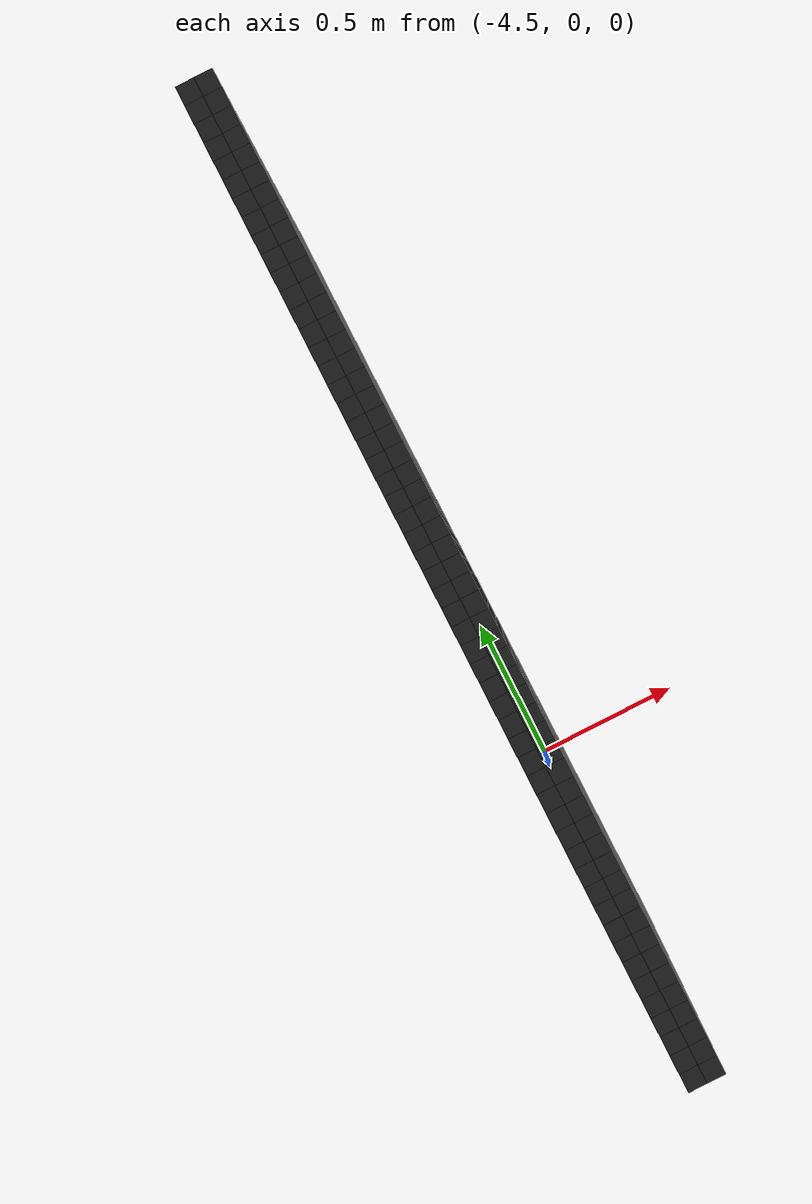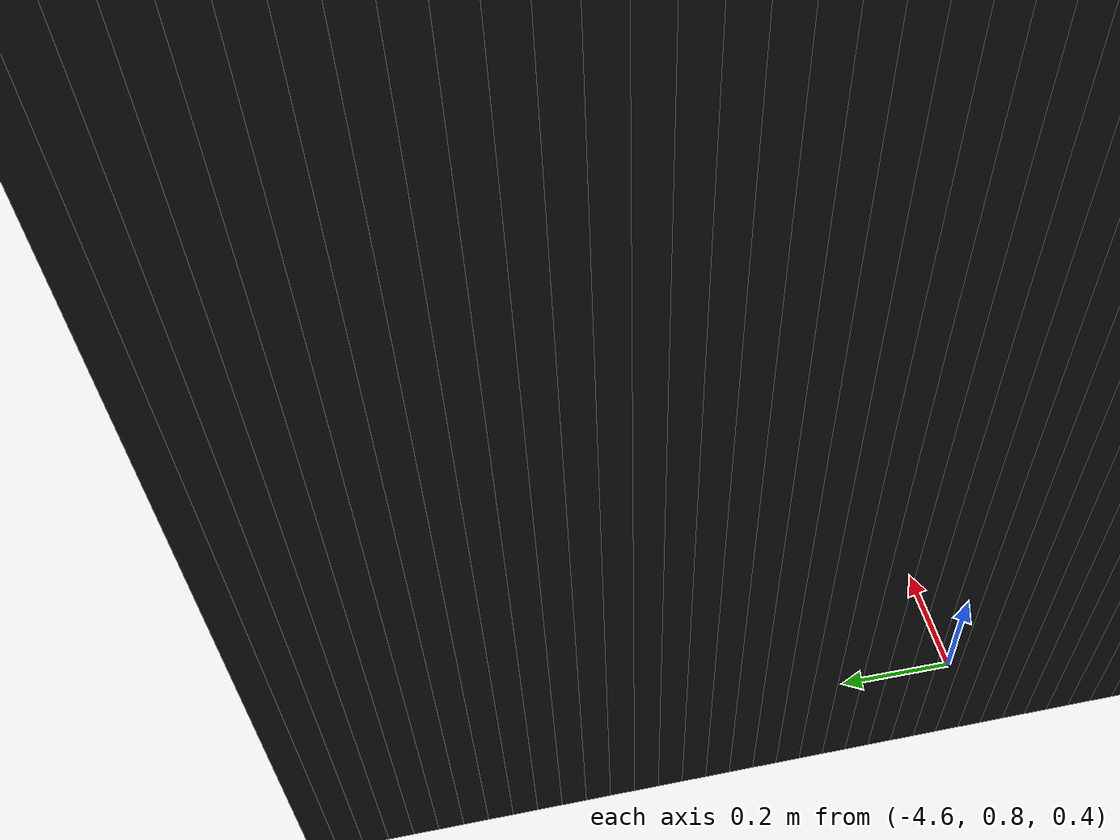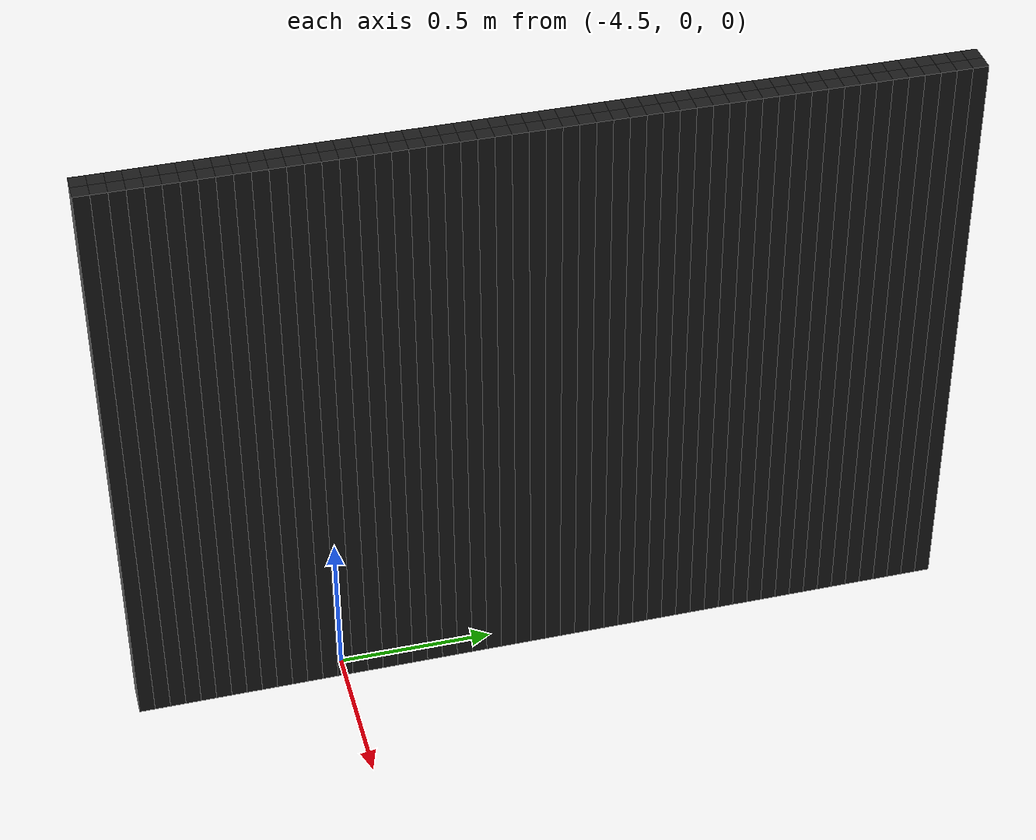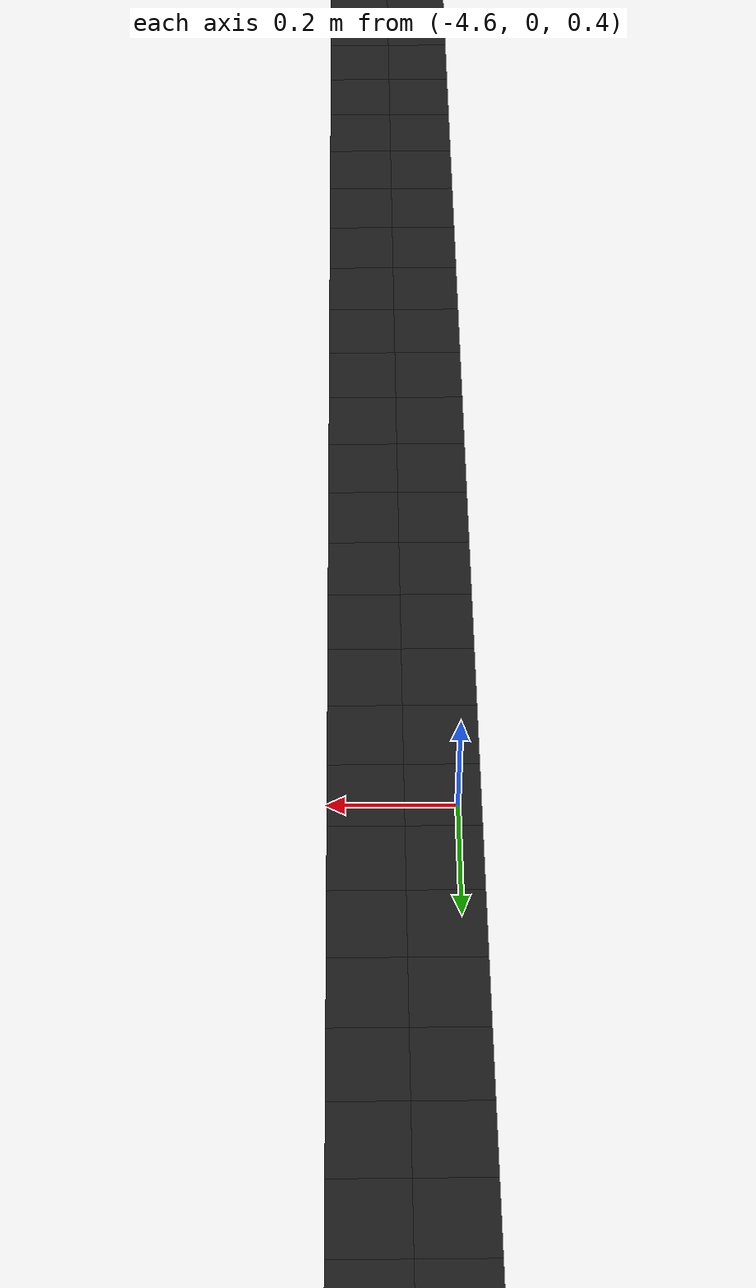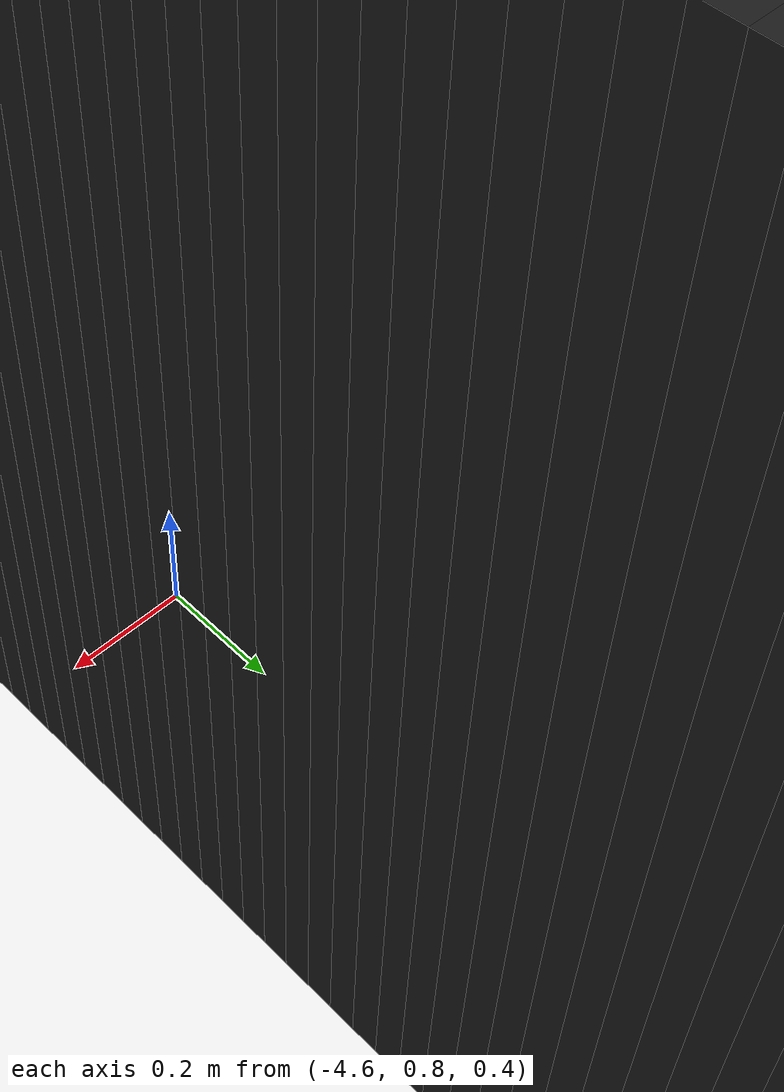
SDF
<sdf version="1.6">
 <model name="obstacle_0_127">
  <pose>-4.51 2.0 1.0 0 0 0</pose>
  <static>true</static>
  <link name="box_link">
   <collision name="box_collision"><geometry><box><size>0.05 0.05 2.0</size></box></geometry></collision>
   <visual name="box_visual">
    <geometry><box><size>0.05 0.05 2.0</size></box></geometry>
    <material><ambient>0 0 0 1</ambient><diffuse>0.1 0.1 0.1 1</diffuse></material>
   </visual>
  </link>
 </model>
 <model name="obstacle_1_127">
  <pose>-4.46 2.0 1.0 0 0 0</pose>
  <static>true</static>
  <link name="box_link">
   <collision name="box_collision"><geometry><box><size>0.05 0.05 2.0</size></box></geometry></collision>
   <visual name="box_visual">
    <geometry><box><size>0.05 0.05 2.0</size></box></geometry>
    <material><ambient>0 0 0 1</ambient><diffuse>0.1 0.1 0.1 1</diffuse></material>
   </visual>
  </link>
 </model>
 <model name="obstacle_0_128">
  <pose>-4.51 1.9500000000000002 1.0 0 0 0</pose>
  <static>true</static>
  <link name="box_link">
   <collision name="box_collision"><geometry><box><size>0.05 0.05 2.0</size></box></geometry></collision>
   <visual name="box_visual">
    <geometry><box><size>0.05 0.05 2.0</size></box></geometry>
    <material><ambient>0 0 0 1</ambient><diffuse>0.1 0.1 0.1 1</diffuse></material>
   </visual>
  </link>
 </model>
 <model name="obstacle_1_128">
  <pose>-4.46 1.9500000000000002 1.0 0 0 0</pose>
  <static>true</static>
  <link name="box_link">
   <collision name="box_collision"><geometry><box><size>0.05 0.05 2.0</size></box></geometry></collision>
   <visual name="box_visual">
    <geometry><box><size>0.05 0.05 2.0</size></box></geometry>
    <material><ambient>0 0 0 1</ambient><diffuse>0.1 0.1 0.1 1</diffuse></material>
   </visual>
  </link>
 </model>
 <model name="obstacle_0_129">
  <pose>-4.51 1.9000000000000004 1.0 0 0 0</pose>
  <static>true</static>
  <link name="box_link">
   <collision name="box_collision"><geometry><box><size>0.05 0.05 2.0</size></box></geometry></collision>
   <visual name="box_visual">
    <geometry><box><size>0.05 0.05 2.0</size></box></geometry>
    <material><ambient>0 0 0 1</ambient><diffuse>0.1 0.1 0.1 1</diffuse></material>
   </visual>
  </link>
 </model>
 <model name="obstacle_1_129">
  <pose>-4.46 1.9000000000000004 1.0 0 0 0</pose>
  <static>true</static>
  <link name="box_link">
   <collision name="box_collision"><geometry><box><size>0.05 0.05 2.0</size></box></geometry></collision>
   <visual name="box_visual">
    <geometry><box><size>0.05 0.05 2.0</size></box></geometry>
    <material><ambient>0 0 0 1</ambient><diffuse>0.1 0.1 0.1 1</diffuse></material>
   </visual>
  </link>
 </model>
 <model name="obstacle_0_130">
  <pose>-4.51 1.8499999999999996 1.0 0 0 0</pose>
  <static>true</static>
  <link name="box_link">
   <collision name="box_collision"><geometry><box><size>0.05 0.05 2.0</size></box></geometry></collision>
   <visual name="box_visual">
    <geometry><box><size>0.05 0.05 2.0</size></box></geometry>
    <material><ambient>0 0 0 1</ambient><diffuse>0.1 0.1 0.1 1</diffuse></material>
   </visual>
  </link>
 </model>
 <model name="obstacle_1_130">
  <pose>-4.46 1.8499999999999996 1.0 0 0 0</pose>
  <static>true</static>
  <link name="box_link">
   <collision name="box_collision"><geometry><box><size>0.05 0.05 2.0</size></box></geometry></collision>
   <visual name="box_visual">
    <geometry><box><size>0.05 0.05 2.0</size></box></geometry>
    <material><ambient>0 0 0 1</ambient><diffuse>0.1 0.1 0.1 1</diffuse></material>
   </visual>
  </link>
 </model>
 <model name="obstacle_0_131">
  <pose>-4.51 1.7999999999999998 1.0 0 0 0</pose>
  <static>true</static>
  <link name="box_link">
   <collision name="box_collision"><geometry><box><size>0.05 0.05 2.0</size></box></geometry></collision>
   <visual name="box_visual">
    <geometry><box><size>0.05 0.05 2.0</size></box></geometry>
    <material><ambient>0 0 0 1</ambient><diffuse>0.1 0.1 0.1 1</diffuse></material>
   </visual>
  </link>
 </model>
 <model name="obstacle_1_131">
  <pose>-4.46 1.7999999999999998 1.0 0 0 0</pose>
  <static>true</static>
  <link name="box_link">
   <collision name="box_collision"><geometry><box><size>0.05 0.05 2.0</size></box></geometry></collision>
   <visual name="box_visual">
    <geometry><box><size>0.05 0.05 2.0</size></box></geometry>
    <material><ambient>0 0 0 1</ambient><diffuse>0.1 0.1 0.1 1</diffuse></material>
   </visual>
  </link>
 </model>
 <model name="obstacle_0_132">
  <pose>-4.51 1.75 1.0 0 0 0</pose>
  <static>true</static>
  <link name="box_link">
   <collision name="box_collision"><geometry><box><size>0.05 0.05 2.0</size></box></geometry></collision>
   <visual name="box_visual">
    <geometry><box><size>0.05 0.05 2.0</size></box></geometry>
    <material><ambient>0 0 0 1</ambient><diffuse>0.1 0.1 0.1 1</diffuse></material>
   </visual>
  </link>
 </model>
 <model name="obstacle_1_132">
  <pose>-4.46 1.75 1.0 0 0 0</pose>
  <static>true</static>
  <link name="box_link">
   <collision name="box_collision"><geometry><box><size>0.05 0.05 2.0</size></box></geometry></collision>
   <visual name="box_visual">
    <geometry><box><size>0.05 0.05 2.0</size></box></geometry>
    <material><ambient>0 0 0 1</ambient><diffuse>0.1 0.1 0.1 1</diffuse></material>
   </visual>
  </link>
 </model>
 <model name="obstacle_0_133">
  <pose>-4.51 1.7000000000000002 1.0 0 0 0</pose>
  <static>true</static>
  <link name="box_link">
   <collision name="box_collision"><geometry><box><size>0.05 0.05 2.0</size></box></geometry></collision>
   <visual name="box_visual">
    <geometry><box><size>0.05 0.05 2.0</size></box></geometry>
    <material><ambient>0 0 0 1</ambient><diffuse>0.1 0.1 0.1 1</diffuse></material>
   </visual>
  </link>
 </model>
 <model name="obstacle_1_133">
  <pose>-4.46 1.7000000000000002 1.0 0 0 0</pose>
  <static>true</static>
  <link name="box_link">
   <collision name="box_collision"><geometry><box><size>0.05 0.05 2.0</size></box></geometry></collision>
   <visual name="box_visual">
    <geometry><box><size>0.05 0.05 2.0</size></box></geometry>
    <material><ambient>0 0 0 1</ambient><diffuse>0.1 0.1 0.1 1</diffuse></material>
   </visual>
  </link>
 </model>
 <model name="obstacle_0_134">
  <pose>-4.51 1.65 1.0 0 0 0</pose>
  <static>true</static>
  <link name="box_link">
   <collision name="box_collision"><geometry><box><size>0.05 0.05 2.0</size></box></geometry></collision>
   <visual name="box_visual">
    <geometry><box><size>0.05 0.05 2.0</size></box></geometry>
    <material><ambient>0 0 0 1</ambient><diffuse>0.1 0.1 0.1 1</diffuse></material>
   </visual>
  </link>
 </model>
 <model name="obstacle_1_134">
  <pose>-4.46 1.65 1.0 0 0 0</pose>
  <static>true</static>
  <link name="box_link">
   <collision name="box_collision"><geometry><box><size>0.05 0.05 2.0</size></box></geometry></collision>
   <visual name="box_visual">
    <geometry><box><size>0.05 0.05 2.0</size></box></geometry>
    <material><ambient>0 0 0 1</ambient><diffuse>0.1 0.1 0.1 1</diffuse></material>
   </visual>
  </link>
 </model>
 <model name="obstacle_0_135">
  <pose>-4.51 1.6 1.0 0 0 0</pose>
  <static>true</static>
  <link name="box_link">
   <collision name="box_collision"><geometry><box><size>0.05 0.05 2.0</size></box></geometry></collision>
   <visual name="box_visual">
    <geometry><box><size>0.05 0.05 2.0</size></box></geometry>
    <material><ambient>0 0 0 1</ambient><diffuse>0.1 0.1 0.1 1</diffuse></material>
   </visual>
  </link>
 </model>
 <model name="obstacle_1_135">
  <pose>-4.46 1.6 1.0 0 0 0</pose>
  <static>true</static>
  <link name="box_link">
   <collision name="box_collision"><geometry><box><size>0.05 0.05 2.0</size></box></geometry></collision>
   <visual name="box_visual">
    <geometry><box><size>0.05 0.05 2.0</size></box></geometry>
    <material><ambient>0 0 0 1</ambient><diffuse>0.1 0.1 0.1 1</diffuse></material>
   </visual>
  </link>
 </model>
 <model name="obstacle_0_136">
  <pose>-4.51 1.5499999999999998 1.0 0 0 0</pose>
  <static>true</static>
  <link name="box_link">
   <collision name="box_collision"><geometry><box><size>0.05 0.05 2.0</size></box></geometry></collision>
   <visual name="box_visual">
    <geometry><box><size>0.05 0.05 2.0</size></box></geometry>
    <material><ambient>0 0 0 1</ambient><diffuse>0.1 0.1 0.1 1</diffuse></material>
   </visual>
  </link>
 </model>
 <model name="obstacle_1_136">
  <pose>-4.46 1.5499999999999998 1.0 0 0 0</pose>
  <static>true</static>
  <link name="box_link">
   <collision name="box_collision"><geometry><box><size>0.05 0.05 2.0</size></box></geometry></collision>
   <visual name="box_visual">
    <geometry><box><size>0.05 0.05 2.0</size></box></geometry>
    <material><ambient>0 0 0 1</ambient><diffuse>0.1 0.1 0.1 1</diffuse></material>
   </visual>
  </link>
 </model>
 <model name="obstacle_0_137">
  <pose>-4.51 1.5 1.0 0 0 0</pose>
  <static>true</static>
  <link name="box_link">
   <collision name="box_collision"><geometry><box><size>0.05 0.05 2.0</size></box></geometry></collision>
   <visual name="box_visual">
    <geometry><box><size>0.05 0.05 2.0</size></box></geometry>
    <material><ambient>0 0 0 1</ambient><diffuse>0.1 0.1 0.1 1</diffuse></material>
   </visual>
  </link>
 </model>
 <model name="obstacle_1_137">
  <pose>-4.46 1.5 1.0 0 0 0</pose>
  <static>true</static>
  <link name="box_link">
   <collision name="box_collision"><geometry><box><size>0.05 0.05 2.0</size></box></geometry></collision>
   <visual name="box_visual">
    <geometry><box><size>0.05 0.05 2.0</size></box></geometry>
    <material><ambient>0 0 0 1</ambient><diffuse>0.1 0.1 0.1 1</diffuse></material>
   </visual>
  </link>
 </model>
 <model name="obstacle_0_138">
  <pose>-4.51 1.4500000000000002 1.0 0 0 0</pose>
  <static>true</static>
  <link name="box_link">
   <collision name="box_collision"><geometry><box><size>0.05 0.05 2.0</size></box></geometry></collision>
   <visual name="box_visual">
    <geometry><box><size>0.05 0.05 2.0</size></box></geometry>
    <material><ambient>0 0 0 1</ambient><diffuse>0.1 0.1 0.1 1</diffuse></material>
   </visual>
  </link>
 </model>
 <model name="obstacle_1_138">
  <pose>-4.46 1.4500000000000002 1.0 0 0 0</pose>
  <static>true</static>
  <link name="box_link">
   <collision name="box_collision"><geometry><box><size>0.05 0.05 2.0</size></box></geometry></collision>
   <visual name="box_visual">
    <geometry><box><size>0.05 0.05 2.0</size></box></geometry>
    <material><ambient>0 0 0 1</ambient><diffuse>0.1 0.1 0.1 1</diffuse></material>
   </visual>
  </link>
 </model>
 <model name="obstacle_0_139">
  <pose>-4.51 1.4 1.0 0 0 0</pose>
  <static>true</static>
  <link name="box_link">
   <collision name="box_collision"><geometry><box><size>0.05 0.05 2.0</size></box></geometry></collision>
   <visual name="box_visual">
    <geometry><box><size>0.05 0.05 2.0</size></box></geometry>
    <material><ambient>0 0 0 1</ambient><diffuse>0.1 0.1 0.1 1</diffuse></material>
   </visual>
  </link>
 </model>
 <model name="obstacle_1_139">
  <pose>-4.46 1.4 1.0 0 0 0</pose>
  <static>true</static>
  <link name="box_link">
   <collision name="box_collision"><geometry><box><size>0.05 0.05 2.0</size></box></geometry></collision>
   <visual name="box_visual">
    <geometry><box><size>0.05 0.05 2.0</size></box></geometry>
    <material><ambient>0 0 0 1</ambient><diffuse>0.1 0.1 0.1 1</diffuse></material>
   </visual>
  </link>
 </model>
 <model name="obstacle_0_140">
  <pose>-4.51 1.35 1.0 0 0 0</pose>
  <static>true</static>
  <link name="box_link">
   <collision name="box_collision"><geometry><box><size>0.05 0.05 2.0</size></box></geometry></collision>
   <visual name="box_visual">
    <geometry><box><size>0.05 0.05 2.0</size></box></geometry>
    <material><ambient>0 0 0 1</ambient><diffuse>0.1 0.1 0.1 1</diffuse></material>
   </visual>
  </link>
 </model>
 <model name="obstacle_1_140">
  <pose>-4.46 1.35 1.0 0 0 0</pose>
  <static>true</static>
  <link name="box_link">
   <collision name="box_collision"><geometry><box><size>0.05 0.05 2.0</size></box></geometry></collision>
   <visual name="box_visual">
    <geometry><box><size>0.05 0.05 2.0</size></box></geometry>
    <material><ambient>0 0 0 1</ambient><diffuse>0.1 0.1 0.1 1</diffuse></material>
   </visual>
  </link>
 </model>
 <model name="obstacle_0_141">
  <pose>-4.51 1.2999999999999998 1.0 0 0 0</pose>
  <static>true</static>
  <link name="box_link">
   <collision name="box_collision"><geometry><box><size>0.05 0.05 2.0</size></box></geometry></collision>
   <visual name="box_visual">
    <geometry><box><size>0.05 0.05 2.0</size></box></geometry>
    <material><ambient>0 0 0 1</ambient><diffuse>0.1 0.1 0.1 1</diffuse></material>
   </visual>
  </link>
 </model>
 <model name="obstacle_1_141">
  <pose>-4.46 1.2999999999999998 1.0 0 0 0</pose>
  <static>true</static>
  <link name="box_link">
   <collision name="box_collision"><geometry><box><size>0.05 0.05 2.0</size></box></geometry></collision>
   <visual name="box_visual">
    <geometry><box><size>0.05 0.05 2.0</size></box></geometry>
    <material><ambient>0 0 0 1</ambient><diffuse>0.1 0.1 0.1 1</diffuse></material>
   </visual>
  </link>
 </model>
 <model name="obstacle_0_142">
  <pose>-4.51 1.25 1.0 0 0 0</pose>
  <static>true</static>
  <link name="box_link">
   <collision name="box_collision"><geometry><box><size>0.05 0.05 2.0</size></box></geometry></collision>
   <visual name="box_visual">
    <geometry><box><size>0.05 0.05 2.0</size></box></geometry>
    <material><ambient>0 0 0 1</ambient><diffuse>0.1 0.1 0.1 1</diffuse></material>
   </visual>
  </link>
 </model>
 <model name="obstacle_1_142">
  <pose>-4.46 1.25 1.0 0 0 0</pose>
  <static>true</static>
  <link name="box_link">
   <collision name="box_collision"><geometry><box><size>0.05 0.05 2.0</size></box></geometry></collision>
   <visual name="box_visual">
    <geometry><box><size>0.05 0.05 2.0</size></box></geometry>
    <material><ambient>0 0 0 1</ambient><diffuse>0.1 0.1 0.1 1</diffuse></material>
   </visual>
  </link>
 </model>
 <model name="obstacle_0_143">
  <pose>-4.51 1.2000000000000002 1.0 0 0 0</pose>
  <static>true</static>
  <link name="box_link">
   <collision name="box_collision"><geometry><box><size>0.05 0.05 2.0</size></box></geometry></collision>
   <visual name="box_visual">
    <geometry><box><size>0.05 0.05 2.0</size></box></geometry>
    <material><ambient>0 0 0 1</ambient><diffuse>0.1 0.1 0.1 1</diffuse></material>
   </visual>
  </link>
 </model>
 <model name="obstacle_1_143">
  <pose>-4.46 1.2000000000000002 1.0 0 0 0</pose>
  <static>true</static>
  <link name="box_link">
   <collision name="box_collision"><geometry><box><size>0.05 0.05 2.0</size></box></geometry></collision>
   <visual name="box_visual">
    <geometry><box><size>0.05 0.05 2.0</size></box></geometry>
    <material><ambient>0 0 0 1</ambient><diffuse>0.1 0.1 0.1 1</diffuse></material>
   </visual>
  </link>
 </model>
 <model name="obstacle_0_144">
  <pose>-4.51 1.15 1.0 0 0 0</pose>
  <static>true</static>
  <link name="box_link">
   <collision name="box_collision"><geometry><box><size>0.05 0.05 2.0</size></box></geometry></collision>
   <visual name="box_visual">
    <geometry><box><size>0.05 0.05 2.0</size></box></geometry>
    <material><ambient>0 0 0 1</ambient><diffuse>0.1 0.1 0.1 1</diffuse></material>
   </visual>
  </link>
 </model>
 <model name="obstacle_1_144">
  <pose>-4.46 1.15 1.0 0 0 0</pose>
  <static>true</static>
  <link name="box_link">
   <collision name="box_collision"><geometry><box><size>0.05 0.05 2.0</size></box></geometry></collision>
   <visual name="box_visual">
    <geometry><box><size>0.05 0.05 2.0</size></box></geometry>
    <material><ambient>0 0 0 1</ambient><diffuse>0.1 0.1 0.1 1</diffuse></material>
   </visual>
  </link>
 </model>
 <model name="obstacle_0_145">
  <pose>-4.51 1.1 1.0 0 0 0</pose>
  <static>true</static>
  <link name="box_link">
   <collision name="box_collision"><geometry><box><size>0.05 0.05 2.0</size></box></geometry></collision>
   <visual name="box_visual">
    <geometry><box><size>0.05 0.05 2.0</size></box></geometry>
    <material><ambient>0 0 0 1</ambient><diffuse>0.1 0.1 0.1 1</diffuse></material>
   </visual>
  </link>
 </model>
 <model name="obstacle_1_145">
  <pose>-4.46 1.1 1.0 0 0 0</pose>
  <static>true</static>
  <link name="box_link">
   <collision name="box_collision"><geometry><box><size>0.05 0.05 2.0</size></box></geometry></collision>
   <visual name="box_visual">
    <geometry><box><size>0.05 0.05 2.0</size></box></geometry>
    <material><ambient>0 0 0 1</ambient><diffuse>0.1 0.1 0.1 1</diffuse></material>
   </visual>
  </link>
 </model>
 <model name="obstacle_0_146">
  <pose>-4.51 1.0499999999999998 1.0 0 0 0</pose>
  <static>true</static>
  <link name="box_link">
   <collision name="box_collision"><geometry><box><size>0.05 0.05 2.0</size></box></geometry></collision>
   <visual name="box_visual">
    <geometry><box><size>0.05 0.05 2.0</size></box></geometry>
    <material><ambient>0 0 0 1</ambient><diffuse>0.1 0.1 0.1 1</diffuse></material>
   </visual>
  </link>
 </model>
 <model name="obstacle_1_146">
  <pose>-4.46 1.0499999999999998 1.0 0 0 0</pose>
  <static>true</static>
  <link name="box_link">
   <collision name="box_collision"><geometry><box><size>0.05 0.05 2.0</size></box></geometry></collision>
   <visual name="box_visual">
    <geometry><box><size>0.05 0.05 2.0</size></box></geometry>
    <material><ambient>0 0 0 1</ambient><diffuse>0.1 0.1 0.1 1</diffuse></material>
   </visual>
  </link>
 </model>
 <model name="obstacle_0_147">
  <pose>-4.51 1.0 1.0 0 0 0</pose>
  <static>true</static>
  <link name="box_link">
   <collision name="box_collision"><geometry><box><size>0.05 0.05 2.0</size></box></geometry></collision>
   <visual name="box_visual">
    <geometry><box><size>0.05 0.05 2.0</size></box></geometry>
    <material><ambient>0 0 0 1</ambient><diffuse>0.1 0.1 0.1 1</diffuse></material>
   </visual>
  </link>
 </model>
 <model name="obstacle_1_147">
  <pose>-4.46 1.0 1.0 0 0 0</pose>
  <static>true</static>
  <link name="box_link">
   <collision name="box_collision"><geometry><box><size>0.05 0.05 2.0</size></box></geometry></collision>
   <visual name="box_visual">
    <geometry><box><size>0.05 0.05 2.0</size></box></geometry>
    <material><ambient>0 0 0 1</ambient><diffuse>0.1 0.1 0.1 1</diffuse></material>
   </visual>
  </link>
 </model>
 <model name="obstacle_0_148">
  <pose>-4.51 0.9500000000000002 1.0 0 0 0</pose>
  <static>true</static>
  <link name="box_link">
   <collision name="box_collision"><geometry><box><size>0.05 0.05 2.0</size></box></geometry></collision>
   <visual name="box_visual">
    <geometry><box><size>0.05 0.05 2.0</size></box></geometry>
    <material><ambient>0 0 0 1</ambient><diffuse>0.1 0.1 0.1 1</diffuse></material>
   </visual>
  </link>
 </model>
 <model name="obstacle_1_148">
  <pose>-4.46 0.9500000000000002 1.0 0 0 0</pose>
  <static>true</static>
  <link name="box_link">
   <collision name="box_collision"><geometry><box><size>0.05 0.05 2.0</size></box></geometry></collision>
   <visual name="box_visual">
    <geometry><box><size>0.05 0.05 2.0</size></box></geometry>
    <material><ambient>0 0 0 1</ambient><diffuse>0.1 0.1 0.1 1</diffuse></material>
   </visual>
  </link>
 </model>
 <model name="obstacle_0_149">
  <pose>-4.51 0.8999999999999999 1.0 0 0 0</pose>
  <static>true</static>
  <link name="box_link">
   <collision name="box_collision"><geometry><box><size>0.05 0.05 2.0</size></box></geometry></collision>
   <visual name="box_visual">
    <geometry><box><size>0.05 0.05 2.0</size></box></geometry>
    <material><ambient>0 0 0 1</ambient><diffuse>0.1 0.1 0.1 1</diffuse></material>
   </visual>
  </link>
 </model>
 <model name="obstacle_1_149">
  <pose>-4.46 0.8999999999999999 1.0 0 0 0</pose>
  <static>true</static>
  <link name="box_link">
   <collision name="box_collision"><geometry><box><size>0.05 0.05 2.0</size></box></geometry></collision>
   <visual name="box_visual">
    <geometry><box><size>0.05 0.05 2.0</size></box></geometry>
    <material><ambient>0 0 0 1</ambient><diffuse>0.1 0.1 0.1 1</diffuse></material>
   </visual>
  </link>
 </model>
 <model name="obstacle_0_150">
  <pose>-4.51 0.8500000000000001 1.0 0 0 0</pose>
  <static>true</static>
  <link name="box_link">
   <collision name="box_collision"><geometry><box><size>0.05 0.05 2.0</size></box></geometry></collision>
   <visual name="box_visual">
    <geometry><box><size>0.05 0.05 2.0</size></box></geometry>
    <material><ambient>0 0 0 1</ambient><diffuse>0.1 0.1 0.1 1</diffuse></material>
   </visual>
  </link>
 </model>
 <model name="obstacle_1_150">
  <pose>-4.46 0.8500000000000001 1.0 0 0 0</pose>
  <static>true</static>
  <link name="box_link">
   <collision name="box_collision"><geometry><box><size>0.05 0.05 2.0</size></box></geometry></collision>
   <visual name="box_visual">
    <geometry><box><size>0.05 0.05 2.0</size></box></geometry>
    <material><ambient>0 0 0 1</ambient><diffuse>0.1 0.1 0.1 1</diffuse></material>
   </visual>
  </link>
 </model>
 <model name="obstacle_0_151">
  <pose>-4.51 0.7999999999999998 1.0 0 0 0</pose>
  <static>true</static>
  <link name="box_link">
   <collision name="box_collision"><geometry><box><size>0.05 0.05 2.0</size></box></geometry></collision>
   <visual name="box_visual">
    <geometry><box><size>0.05 0.05 2.0</size></box></geometry>
    <material><ambient>0 0 0 1</ambient><diffuse>0.1 0.1 0.1 1</diffuse></material>
   </visual>
  </link>
 </model>
 <model name="obstacle_1_151">
  <pose>-4.46 0.7999999999999998 1.0 0 0 0</pose>
  <static>true</static>
  <link name="box_link">
   <collision name="box_collision"><geometry><box><size>0.05 0.05 2.0</size></box></geometry></collision>
   <visual name="box_visual">
    <geometry><box><size>0.05 0.05 2.0</size></box></geometry>
    <material><ambient>0 0 0 1</ambient><diffuse>0.1 0.1 0.1 1</diffuse></material>
   </visual>
  </link>
 </model>
 <model name="obstacle_0_152">
  <pose>-4.51 0.75 1.0 0 0 0</pose>
  <static>true</static>
  <link name="box_link">
   <collision name="box_collision"><geometry><box><size>0.05 0.05 2.0</size></box></geometry></collision>
   <visual name="box_visual">
    <geometry><box><size>0.05 0.05 2.0</size></box></geometry>
    <material><ambient>0 0 0 1</ambient><diffuse>0.1 0.1 0.1 1</diffuse></material>
   </visual>
  </link>
 </model>
 <model name="obstacle_1_152">
  <pose>-4.46 0.75 1.0 0 0 0</pose>
  <static>true</static>
  <link name="box_link">
   <collision name="box_collision"><geometry><box><size>0.05 0.05 2.0</size></box></geometry></collision>
   <visual name="box_visual">
    <geometry><box><size>0.05 0.05 2.0</size></box></geometry>
    <material><ambient>0 0 0 1</ambient><diffuse>0.1 0.1 0.1 1</diffuse></material>
   </visual>
  </link>
 </model>
 <model name="obstacle_0_153">
  <pose>-4.51 0.7000000000000002 1.0 0 0 0</pose>
  <static>true</static>
  <link name="box_link">
   <collision name="box_collision"><geometry><box><size>0.05 0.05 2.0</size></box></geometry></collision>
   <visual name="box_visual">
    <geometry><box><size>0.05 0.05 2.0</size></box></geometry>
    <material><ambient>0 0 0 1</ambient><diffuse>0.1 0.1 0.1 1</diffuse></material>
   </visual>
  </link>
 </model>
 <model name="obstacle_1_153">
  <pose>-4.46 0.7000000000000002 1.0 0 0 0</pose>
  <static>true</static>
  <link name="box_link">
   <collision name="box_collision"><geometry><box><size>0.05 0.05 2.0</size></box></geometry></collision>
   <visual name="box_visual">
    <geometry><box><size>0.05 0.05 2.0</size></box></geometry>
    <material><ambient>0 0 0 1</ambient><diffuse>0.1 0.1 0.1 1</diffuse></material>
   </visual>
  </link>
 </model>
 <model name="obstacle_0_154">
  <pose>-4.51 0.6499999999999999 1.0 0 0 0</pose>
  <static>true</static>
  <link name="box_link">
   <collision name="box_collision"><geometry><box><size>0.05 0.05 2.0</size></box></geometry></collision>
   <visual name="box_visual">
    <geometry><box><size>0.05 0.05 2.0</size></box></geometry>
    <material><ambient>0 0 0 1</ambient><diffuse>0.1 0.1 0.1 1</diffuse></material>
   </visual>
  </link>
 </model>
 <model name="obstacle_1_154">
  <pose>-4.46 0.6499999999999999 1.0 0 0 0</pose>
  <static>true</static>
  <link name="box_link">
   <collision name="box_collision"><geometry><box><size>0.05 0.05 2.0</size></box></geometry></collision>
   <visual name="box_visual">
    <geometry><box><size>0.05 0.05 2.0</size></box></geometry>
    <material><ambient>0 0 0 1</ambient><diffuse>0.1 0.1 0.1 1</diffuse></material>
   </visual>
  </link>
 </model>
 <model name="obstacle_0_155">
  <pose>-4.51 0.6000000000000001 1.0 0 0 0</pose>
  <static>true</static>
  <link name="box_link">
   <collision name="box_collision"><geometry><box><size>0.05 0.05 2.0</size></box></geometry></collision>
   <visual name="box_visual">
    <geometry><box><size>0.05 0.05 2.0</size></box></geometry>
    <material><ambient>0 0 0 1</ambient><diffuse>0.1 0.1 0.1 1</diffuse></material>
   </visual>
  </link>
 </model>
 <model name="obstacle_1_155">
  <pose>-4.46 0.6000000000000001 1.0 0 0 0</pose>
  <static>true</static>
  <link name="box_link">
   <collision name="box_collision"><geometry><box><size>0.05 0.05 2.0</size></box></geometry></collision>
   <visual name="box_visual">
    <geometry><box><size>0.05 0.05 2.0</size></box></geometry>
    <material><ambient>0 0 0 1</ambient><diffuse>0.1 0.1 0.1 1</diffuse></material>
   </visual>
  </link>
 </model>
 <model name="obstacle_0_156">
  <pose>-4.51 0.5499999999999998 1.0 0 0 0</pose>
  <static>true</static>
  <link name="box_link">
   <collision name="box_collision"><geometry><box><size>0.05 0.05 2.0</size></box></geometry></collision>
   <visual name="box_visual">
    <geometry><box><size>0.05 0.05 2.0</size></box></geometry>
    <material><ambient>0 0 0 1</ambient><diffuse>0.1 0.1 0.1 1</diffuse></material>
   </visual>
  </link>
 </model>
 <model name="obstacle_1_156">
  <pose>-4.46 0.5499999999999998 1.0 0 0 0</pose>
  <static>true</static>
  <link name="box_link">
   <collision name="box_collision"><geometry><box><size>0.05 0.05 2.0</size></box></geometry></collision>
   <visual name="box_visual">
    <geometry><box><size>0.05 0.05 2.0</size></box></geometry>
    <material><ambient>0 0 0 1</ambient><diffuse>0.1 0.1 0.1 1</diffuse></material>
   </visual>
  </link>
 </model>
 <model name="obstacle_0_157">
  <pose>-4.51 0.5 1.0 0 0 0</pose>
  <static>true</static>
  <link name="box_link">
   <collision name="box_collision"><geometry><box><size>0.05 0.05 2.0</size></box></geometry></collision>
   <visual name="box_visual">
    <geometry><box><size>0.05 0.05 2.0</size></box></geometry>
    <material><ambient>0 0 0 1</ambient><diffuse>0.1 0.1 0.1 1</diffuse></material>
   </visual>
  </link>
 </model>
 <model name="obstacle_1_157">
  <pose>-4.46 0.5 1.0 0 0 0</pose>
  <static>true</static>
  <link name="box_link">
   <collision name="box_collision"><geometry><box><size>0.05 0.05 2.0</size></box></geometry></collision>
   <visual name="box_visual">
    <geometry><box><size>0.05 0.05 2.0</size></box></geometry>
    <material><ambient>0 0 0 1</ambient><diffuse>0.1 0.1 0.1 1</diffuse></material>
   </visual>
  </link>
 </model>
 <model name="obstacle_0_158">
  <pose>-4.51 0.4500000000000002 1.0 0 0 0</pose>
  <static>true</static>
  <link name="box_link">
   <collision name="box_collision"><geometry><box><size>0.05 0.05 2.0</size></box></geometry></collision>
   <visual name="box_visual">
    <geometry><box><size>0.05 0.05 2.0</size></box></geometry>
    <material><ambient>0 0 0 1</ambient><diffuse>0.1 0.1 0.1 1</diffuse></material>
   </visual>
  </link>
 </model>
 <model name="obstacle_1_158">
  <pose>-4.46 0.4500000000000002 1.0 0 0 0</pose>
  <static>true</static>
  <link name="box_link">
   <collision name="box_collision"><geometry><box><size>0.05 0.05 2.0</size></box></geometry></collision>
   <visual name="box_visual">
    <geometry><box><size>0.05 0.05 2.0</size></box></geometry>
    <material><ambient>0 0 0 1</ambient><diffuse>0.1 0.1 0.1 1</diffuse></material>
   </visual>
  </link>
 </model>
 <model name="obstacle_0_159">
  <pose>-4.51 0.3999999999999999 1.0 0 0 0</pose>
  <static>true</static>
  <link name="box_link">
   <collision name="box_collision"><geometry><box><size>0.05 0.05 2.0</size></box></geometry></collision>
   <visual name="box_visual">
    <geometry><box><size>0.05 0.05 2.0</size></box></geometry>
    <material><ambient>0 0 0 1</ambient><diffuse>0.1 0.1 0.1 1</diffuse></material>
   </visual>
  </link>
 </model>
 <model name="obstacle_1_159">
  <pose>-4.46 0.3999999999999999 1.0 0 0 0</pose>
  <static>true</static>
  <link name="box_link">
   <collision name="box_collision"><geometry><box><size>0.05 0.05 2.0</size></box></geometry></collision>
   <visual name="box_visual">
    <geometry><box><size>0.05 0.05 2.0</size></box></geometry>
    <material><ambient>0 0 0 1</ambient><diffuse>0.1 0.1 0.1 1</diffuse></material>
   </visual>
  </link>
 </model>
 <model name="obstacle_0_160">
  <pose>-4.51 0.3500000000000001 1.0 0 0 0</pose>
  <static>true</static>
  <link name="box_link">
   <collision name="box_collision"><geometry><box><size>0.05 0.05 2.0</size></box></geometry></collision>
   <visual name="box_visual">
    <geometry><box><size>0.05 0.05 2.0</size></box></geometry>
    <material><ambient>0 0 0 1</ambient><diffuse>0.1 0.1 0.1 1</diffuse></material>
   </visual>
  </link>
 </model>
 <model name="obstacle_1_160">
  <pose>-4.46 0.3500000000000001 1.0 0 0 0</pose>
  <static>true</static>
  <link name="box_link">
   <collision name="box_collision"><geometry><box><size>0.05 0.05 2.0</size></box></geometry></collision>
   <visual name="box_visual">
    <geometry><box><size>0.05 0.05 2.0</size></box></geometry>
    <material><ambient>0 0 0 1</ambient><diffuse>0.1 0.1 0.1 1</diffuse></material>
   </visual>
  </link>
 </model>
 <model name="obstacle_0_161">
  <pose>-4.51 0.2999999999999998 1.0 0 0 0</pose>
  <static>true</static>
  <link name="box_link">
   <collision name="box_collision"><geometry><box><size>0.05 0.05 2.0</size></box></geometry></collision>
   <visual name="box_visual">
    <geometry><box><size>0.05 0.05 2.0</size></box></geometry>
    <material><ambient>0 0 0 1</ambient><diffuse>0.1 0.1 0.1 1</diffuse></material>
   </visual>
  </link>
 </model>
 <model name="obstacle_1_161">
  <pose>-4.46 0.2999999999999998 1.0 0 0 0</pose>
  <static>true</static>
  <link name="box_link">
   <collision name="box_collision"><geometry><box><size>0.05 0.05 2.0</size></box></geometry></collision>
   <visual name="box_visual">
    <geometry><box><size>0.05 0.05 2.0</size></box></geometry>
    <material><ambient>0 0 0 1</ambient><diffuse>0.1 0.1 0.1 1</diffuse></material>
   </visual>
  </link>
 </model>
 <model name="obstacle_0_162">
  <pose>-4.51 0.25 1.0 0 0 0</pose>
  <static>true</static>
  <link name="box_link">
   <collision name="box_collision"><geometry><box><size>0.05 0.05 2.0</size></box></geometry></collision>
   <visual name="box_visual">
    <geometry><box><size>0.05 0.05 2.0</size></box></geometry>
    <material><ambient>0 0 0 1</ambient><diffuse>0.1 0.1 0.1 1</diffuse></material>
   </visual>
  </link>
 </model>
 <model name="obstacle_1_162">
  <pose>-4.46 0.25 1.0 0 0 0</pose>
  <static>true</static>
  <link name="box_link">
   <collision name="box_collision"><geometry><box><size>0.05 0.05 2.0</size></box></geometry></collision>
   <visual name="box_visual">
    <geometry><box><size>0.05 0.05 2.0</size></box></geometry>
    <material><ambient>0 0 0 1</ambient><diffuse>0.1 0.1 0.1 1</diffuse></material>
   </visual>
  </link>
 </model>
 <model name="obstacle_0_163">
  <pose>-4.51 0.20000000000000018 1.0 0 0 0</pose>
  <static>true</static>
  <link name="box_link">
   <collision name="box_collision"><geometry><box><size>0.05 0.05 2.0</size></box></geometry></collision>
   <visual name="box_visual">
    <geometry><box><size>0.05 0.05 2.0</size></box></geometry>
    <material><ambient>0 0 0 1</ambient><diffuse>0.1 0.1 0.1 1</diffuse></material>
   </visual>
  </link>
 </model>
 <model name="obstacle_1_163">
  <pose>-4.46 0.20000000000000018 1.0 0 0 0</pose>
  <static>true</static>
  <link name="box_link">
   <collision name="box_collision"><geometry><box><size>0.05 0.05 2.0</size></box></geometry></collision>
   <visual name="box_visual">
    <geometry><box><size>0.05 0.05 2.0</size></box></geometry>
    <material><ambient>0 0 0 1</ambient><diffuse>0.1 0.1 0.1 1</diffuse></material>
   </visual>
  </link>
 </model>
 <model name="obstacle_0_164">
  <pose>-4.51 0.1499999999999999 1.0 0 0 0</pose>
  <static>true</static>
  <link name="box_link">
   <collision name="box_collision"><geometry><box><size>0.05 0.05 2.0</size></box></geometry></collision>
   <visual name="box_visual">
    <geometry><box><size>0.05 0.05 2.0</size></box></geometry>
    <material><ambient>0 0 0 1</ambient><diffuse>0.1 0.1 0.1 1</diffuse></material>
   </visual>
  </link>
 </model>
 <model name="obstacle_1_164">
  <pose>-4.46 0.1499999999999999 1.0 0 0 0</pose>
  <static>true</static>
  <link name="box_link">
   <collision name="box_collision"><geometry><box><size>0.05 0.05 2.0</size></box></geometry></collision>
   <visual name="box_visual">
    <geometry><box><size>0.05 0.05 2.0</size></box></geometry>
    <material><ambient>0 0 0 1</ambient><diffuse>0.1 0.1 0.1 1</diffuse></material>
   </visual>
  </link>
 </model>
 <model name="obstacle_0_165">
  <pose>-4.51 0.10000000000000009 1.0 0 0 0</pose>
  <static>true</static>
  <link name="box_link">
   <collision name="box_collision"><geometry><box><size>0.05 0.05 2.0</size></box></geometry></collision>
   <visual name="box_visual">
    <geometry><box><size>0.05 0.05 2.0</size></box></geometry>
    <material><ambient>0 0 0 1</ambient><diffuse>0.1 0.1 0.1 1</diffuse></material>
   </visual>
  </link>
 </model>
 <model name="obstacle_1_165">
  <pose>-4.46 0.10000000000000009 1.0 0 0 0</pose>
  <static>true</static>
  <link name="box_link">
   <collision name="box_collision"><geometry><box><size>0.05 0.05 2.0</size></box></geometry></collision>
   <visual name="box_visual">
    <geometry><box><size>0.05 0.05 2.0</size></box></geometry>
    <material><ambient>0 0 0 1</ambient><diffuse>0.1 0.1 0.1 1</diffuse></material>
   </visual>
  </link>
 </model>
 <model name="obstacle_0_166">
  <pose>-4.51 0.04999999999999982 1.0 0 0 0</pose>
  <static>true</static>
  <link name="box_link">
   <collision name="box_collision"><geometry><box><size>0.05 0.05 2.0</size></box></geometry></collision>
   <visual name="box_visual">
    <geometry><box><size>0.05 0.05 2.0</size></box></geometry>
    <material><ambient>0 0 0 1</ambient><diffuse>0.1 0.1 0.1 1</diffuse></material>
   </visual>
  </link>
 </model>
 <model name="obstacle_1_166">
  <pose>-4.46 0.04999999999999982 1.0 0 0 0</pose>
  <static>true</static>
  <link name="box_link">
   <collision name="box_collision"><geometry><box><size>0.05 0.05 2.0</size></box></geometry></collision>
   <visual name="box_visual">
    <geometry><box><size>0.05 0.05 2.0</size></box></geometry>
    <material><ambient>0 0 0 1</ambient><diffuse>0.1 0.1 0.1 1</diffuse></material>
   </visual>
  </link>
 </model>
 <model name="obstacle_0_167">
  <pose>-4.51 0.0 1.0 0 0 0</pose>
  <static>true</static>
  <link name="box_link">
   <collision name="box_collision"><geometry><box><size>0.05 0.05 2.0</size></box></geometry></collision>
   <visual name="box_visual">
    <geometry><box><size>0.05 0.05 2.0</size></box></geometry>
    <material><ambient>0 0 0 1</ambient><diffuse>0.1 0.1 0.1 1</diffuse></material>
   </visual>
  </link>
 </model>
 <model name="obstacle_1_167">
  <pose>-4.46 0.0 1.0 0 0 0</pose>
  <static>true</static>
  <link name="box_link">
   <collision name="box_collision"><geometry><box><size>0.05 0.05 2.0</size></box></geometry></collision>
   <visual name="box_visual">
    <geometry><box><size>0.05 0.05 2.0</size></box></geometry>
    <material><ambient>0 0 0 1</ambient><diffuse>0.1 0.1 0.1 1</diffuse></material>
   </visual>
  </link>
 </model>
 <model name="obstacle_0_168">
  <pose>-4.51 -0.050000000000000266 1.0 0 0 0</pose>
  <static>true</static>
  <link name="box_link">
   <collision name="box_collision"><geometry><box><size>0.05 0.05 2.0</size></box></geometry></collision>
   <visual name="box_visual">
    <geometry><box><size>0.05 0.05 2.0</size></box></geometry>
    <material><ambient>0 0 0 1</ambient><diffuse>0.1 0.1 0.1 1</diffuse></material>
   </visual>
  </link>
 </model>
 <model name="obstacle_1_168">
  <pose>-4.46 -0.050000000000000266 1.0 0 0 0</pose>
  <static>true</static>
  <link name="box_link">
   <collision name="box_collision"><geometry><box><size>0.05 0.05 2.0</size></box></geometry></collision>
   <visual name="box_visual">
    <geometry><box><size>0.05 0.05 2.0</size></box></geometry>
    <material><ambient>0 0 0 1</ambient><diffuse>0.1 0.1 0.1 1</diffuse></material>
   </visual>
  </link>
 </model>
 <model name="obstacle_0_169">
  <pose>-4.51 -0.10000000000000009 1.0 0 0 0</pose>
  <static>true</static>
  <link name="box_link">
   <collision name="box_collision"><geometry><box><size>0.05 0.05 2.0</size></box></geometry></collision>
   <visual name="box_visual">
    <geometry><box><size>0.05 0.05 2.0</size></box></geometry>
    <material><ambient>0 0 0 1</ambient><diffuse>0.1 0.1 0.1 1</diffuse></material>
   </visual>
  </link>
 </model>
 <model name="obstacle_1_169">
  <pose>-4.46 -0.10000000000000009 1.0 0 0 0</pose>
  <static>true</static>
  <link name="box_link">
   <collision name="box_collision"><geometry><box><size>0.05 0.05 2.0</size></box></geometry></collision>
   <visual name="box_visual">
    <geometry><box><size>0.05 0.05 2.0</size></box></geometry>
    <material><ambient>0 0 0 1</ambient><diffuse>0.1 0.1 0.1 1</diffuse></material>
   </visual>
  </link>
 </model>
 <model name="obstacle_0_170">
  <pose>-4.51 -0.1499999999999999 1.0 0 0 0</pose>
  <static>true</static>
  <link name="box_link">
   <collision name="box_collision"><geometry><box><size>0.05 0.05 2.0</size></box></geometry></collision>
   <visual name="box_visual">
    <geometry><box><size>0.05 0.05 2.0</size></box></geometry>
    <material><ambient>0 0 0 1</ambient><diffuse>0.1 0.1 0.1 1</diffuse></material>
   </visual>
  </link>
 </model>
 <model name="obstacle_1_170">
  <pose>-4.46 -0.1499999999999999 1.0 0 0 0</pose>
  <static>true</static>
  <link name="box_link">
   <collision name="box_collision"><geometry><box><size>0.05 0.05 2.0</size></box></geometry></collision>
   <visual name="box_visual">
    <geometry><box><size>0.05 0.05 2.0</size></box></geometry>
    <material><ambient>0 0 0 1</ambient><diffuse>0.1 0.1 0.1 1</diffuse></material>
   </visual>
  </link>
 </model>
 <model name="obstacle_0_171">
  <pose>-4.51 -0.20000000000000018 1.0 0 0 0</pose>
  <static>true</static>
  <link name="box_link">
   <collision name="box_collision"><geometry><box><size>0.05 0.05 2.0</size></box></geometry></collision>
   <visual name="box_visual">
    <geometry><box><size>0.05 0.05 2.0</size></box></geometry>
    <material><ambient>0 0 0 1</ambient><diffuse>0.1 0.1 0.1 1</diffuse></material>
   </visual>
  </link>
 </model>
 <model name="obstacle_1_171">
  <pose>-4.46 -0.20000000000000018 1.0 0 0 0</pose>
  <static>true</static>
  <link name="box_link">
   <collision name="box_collision"><geometry><box><size>0.05 0.05 2.0</size></box></geometry></collision>
   <visual name="box_visual">
    <geometry><box><size>0.05 0.05 2.0</size></box></geometry>
    <material><ambient>0 0 0 1</ambient><diffuse>0.1 0.1 0.1 1</diffuse></material>
   </visual>
  </link>
 </model>
 <model name="obstacle_0_172">
  <pose>-4.51 -0.25 1.0 0 0 0</pose>
  <static>true</static>
  <link name="box_link">
   <collision name="box_collision"><geometry><box><size>0.05 0.05 2.0</size></box></geometry></collision>
   <visual name="box_visual">
    <geometry><box><size>0.05 0.05 2.0</size></box></geometry>
    <material><ambient>0 0 0 1</ambient><diffuse>0.1 0.1 0.1 1</diffuse></material>
   </visual>
  </link>
 </model>
 <model name="obstacle_1_172">
  <pose>-4.46 -0.25 1.0 0 0 0</pose>
  <static>true</static>
  <link name="box_link">
   <collision name="box_collision"><geometry><box><size>0.05 0.05 2.0</size></box></geometry></collision>
   <visual name="box_visual">
    <geometry><box><size>0.05 0.05 2.0</size></box></geometry>
    <material><ambient>0 0 0 1</ambient><diffuse>0.1 0.1 0.1 1</diffuse></material>
   </visual>
  </link>
 </model>
 <model name="obstacle_0_173">
  <pose>-4.51 -0.30000000000000004 1.0 0 0 0</pose>
  <static>true</static>
  <link name="box_link">
   <collision name="box_collision"><geometry><box><size>0.05 0.05 2.0</size></box></geometry></collision>
   <visual name="box_visual">
    <geometry><box><size>0.05 0.05 2.0</size></box></geometry>
    <material><ambient>0 0 0 1</ambient><diffuse>0.1 0.1 0.1 1</diffuse></material>
   </visual>
  </link>
 </model>
 <model name="obstacle_1_173">
  <pose>-4.46 -0.30000000000000004 1.0 0 0 0</pose>
  <static>true</static>
  <link name="box_link">
   <collision name="box_collision"><geometry><box><size>0.05 0.05 2.0</size></box></geometry></collision>
   <visual name="box_visual">
    <geometry><box><size>0.05 0.05 2.0</size></box></geometry>
    <material><ambient>0 0 0 1</ambient><diffuse>0.1 0.1 0.1 1</diffuse></material>
   </visual>
  </link>
 </model>
 <model name="obstacle_0_174">
  <pose>-4.51 -0.3500000000000001 1.0 0 0 0</pose>
  <static>true</static>
  <link name="box_link">
   <collision name="box_collision"><geometry><box><size>0.05 0.05 2.0</size></box></geometry></collision>
   <visual name="box_visual">
    <geometry><box><size>0.05 0.05 2.0</size></box></geometry>
    <material><ambient>0 0 0 1</ambient><diffuse>0.1 0.1 0.1 1</diffuse></material>
   </visual>
  </link>
 </model>
 <model name="obstacle_1_174">
  <pose>-4.46 -0.3500000000000001 1.0 0 0 0</pose>
  <static>true</static>
  <link name="box_link">
   <collision name="box_collision"><geometry><box><size>0.05 0.05 2.0</size></box></geometry></collision>
   <visual name="box_visual">
    <geometry><box><size>0.05 0.05 2.0</size></box></geometry>
    <material><ambient>0 0 0 1</ambient><diffuse>0.1 0.1 0.1 1</diffuse></material>
   </visual>
  </link>
 </model>
 <model name="obstacle_0_175">
  <pose>-4.51 -0.40000000000000013 1.0 0 0 0</pose>
  <static>true</static>
  <link name="box_link">
   <collision name="box_collision"><geometry><box><size>0.05 0.05 2.0</size></box></geometry></collision>
   <visual name="box_visual">
    <geometry><box><size>0.05 0.05 2.0</size></box></geometry>
    <material><ambient>0 0 0 1</ambient><diffuse>0.1 0.1 0.1 1</diffuse></material>
   </visual>
  </link>
 </model>
 <model name="obstacle_1_175">
  <pose>-4.46 -0.40000000000000013 1.0 0 0 0</pose>
  <static>true</static>
  <link name="box_link">
   <collision name="box_collision"><geometry><box><size>0.05 0.05 2.0</size></box></geometry></collision>
   <visual name="box_visual">
    <geometry><box><size>0.05 0.05 2.0</size></box></geometry>
    <material><ambient>0 0 0 1</ambient><diffuse>0.1 0.1 0.1 1</diffuse></material>
   </visual>
  </link>
 </model>
 <model name="obstacle_0_176">
  <pose>-4.51 -0.4500000000000002 1.0 0 0 0</pose>
  <static>true</static>
  <link name="box_link">
   <collision name="box_collision"><geometry><box><size>0.05 0.05 2.0</size></box></geometry></collision>
   <visual name="box_visual">
    <geometry><box><size>0.05 0.05 2.0</size></box></geometry>
    <material><ambient>0 0 0 1</ambient><diffuse>0.1 0.1 0.1 1</diffuse></material>
   </visual>
  </link>
 </model>
 <model name="obstacle_1_176">
  <pose>-4.46 -0.4500000000000002 1.0 0 0 0</pose>
  <static>true</static>
  <link name="box_link">
   <collision name="box_collision"><geometry><box><size>0.05 0.05 2.0</size></box></geometry></collision>
   <visual name="box_visual">
    <geometry><box><size>0.05 0.05 2.0</size></box></geometry>
    <material><ambient>0 0 0 1</ambient><diffuse>0.1 0.1 0.1 1</diffuse></material>
   </visual>
  </link>
 </model>
 <model name="obstacle_0_177">
  <pose>-4.51 -0.5 1.0 0 0 0</pose>
  <static>true</static>
  <link name="box_link">
   <collision name="box_collision"><geometry><box><size>0.05 0.05 2.0</size></box></geometry></collision>
   <visual name="box_visual">
    <geometry><box><size>0.05 0.05 2.0</size></box></geometry>
    <material><ambient>0 0 0 1</ambient><diffuse>0.1 0.1 0.1 1</diffuse></material>
   </visual>
  </link>
 </model>
 <model name="obstacle_1_177">
  <pose>-4.46 -0.5 1.0 0 0 0</pose>
  <static>true</static>
  <link name="box_link">
   <collision name="box_collision"><geometry><box><size>0.05 0.05 2.0</size></box></geometry></collision>
   <visual name="box_visual">
    <geometry><box><size>0.05 0.05 2.0</size></box></geometry>
    <material><ambient>0 0 0 1</ambient><diffuse>0.1 0.1 0.1 1</diffuse></material>
   </visual>
  </link>
 </model>
 <model name="obstacle_0_178">
  <pose>-4.51 -0.55 1.0 0 0 0</pose>
  <static>true</static>
  <link name="box_link">
   <collision name="box_collision"><geometry><box><size>0.05 0.05 2.0</size></box></geometry></collision>
   <visual name="box_visual">
    <geometry><box><size>0.05 0.05 2.0</size></box></geometry>
    <material><ambient>0 0 0 1</ambient><diffuse>0.1 0.1 0.1 1</diffuse></material>
   </visual>
  </link>
 </model>
 <model name="obstacle_1_178">
  <pose>-4.46 -0.55 1.0 0 0 0</pose>
  <static>true</static>
  <link name="box_link">
   <collision name="box_collision"><geometry><box><size>0.05 0.05 2.0</size></box></geometry></collision>
   <visual name="box_visual">
    <geometry><box><size>0.05 0.05 2.0</size></box></geometry>
    <material><ambient>0 0 0 1</ambient><diffuse>0.1 0.1 0.1 1</diffuse></material>
   </visual>
  </link>
 </model>
 <model name="obstacle_0_179">
  <pose>-4.51 -0.6000000000000001 1.0 0 0 0</pose>
  <static>true</static>
  <link name="box_link">
   <collision name="box_collision"><geometry><box><size>0.05 0.05 2.0</size></box></geometry></collision>
   <visual name="box_visual">
    <geometry><box><size>0.05 0.05 2.0</size></box></geometry>
    <material><ambient>0 0 0 1</ambient><diffuse>0.1 0.1 0.1 1</diffuse></material>
   </visual>
  </link>
 </model>
 <model name="obstacle_1_179">
  <pose>-4.46 -0.6000000000000001 1.0 0 0 0</pose>
  <static>true</static>
  <link name="box_link">
   <collision name="box_collision"><geometry><box><size>0.05 0.05 2.0</size></box></geometry></collision>
   <visual name="box_visual">
    <geometry><box><size>0.05 0.05 2.0</size></box></geometry>
    <material><ambient>0 0 0 1</ambient><diffuse>0.1 0.1 0.1 1</diffuse></material>
   </visual>
  </link>
 </model>
 <model name="obstacle_0_180">
  <pose>-4.51 -0.6500000000000001 1.0 0 0 0</pose>
  <static>true</static>
  <link name="box_link">
   <collision name="box_collision"><geometry><box><size>0.05 0.05 2.0</size></box></geometry></collision>
   <visual name="box_visual">
    <geometry><box><size>0.05 0.05 2.0</size></box></geometry>
    <material><ambient>0 0 0 1</ambient><diffuse>0.1 0.1 0.1 1</diffuse></material>
   </visual>
  </link>
 </model>
 <model name="obstacle_1_180">
  <pose>-4.46 -0.6500000000000001 1.0 0 0 0</pose>
  <static>true</static>
  <link name="box_link">
   <collision name="box_collision"><geometry><box><size>0.05 0.05 2.0</size></box></geometry></collision>
   <visual name="box_visual">
    <geometry><box><size>0.05 0.05 2.0</size></box></geometry>
    <material><ambient>0 0 0 1</ambient><diffuse>0.1 0.1 0.1 1</diffuse></material>
   </visual>
  </link>
 </model>
</sdf>
